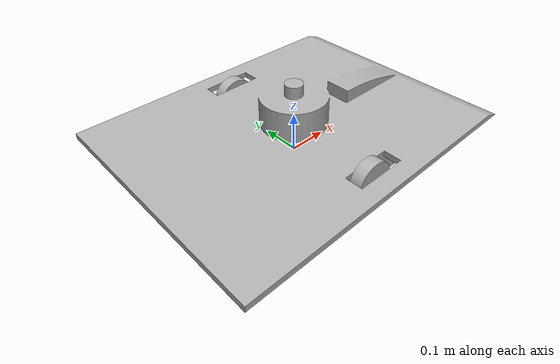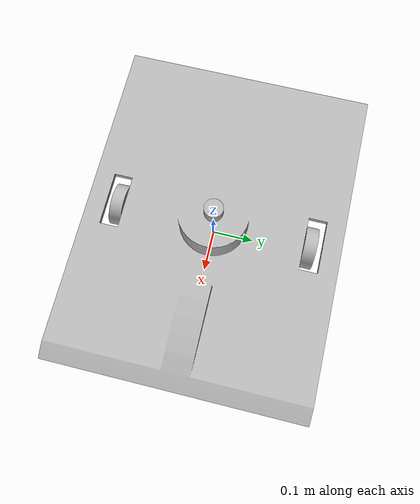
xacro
<?xml version="1.0" ?>
<robot name="t_amr" xmlns:xacro="http://www.ros.org/wiki/xacro">

<xacro:include filename="$(find t_amr_description)/urdf/materials.xacro" />
<xacro:include filename="$(find t_amr_description)/urdf/t_amr.trans" />
<xacro:include filename="$(find t_amr_description)/urdf/t_amr.gazebo" />
<link name="base_link">
  <inertial>
    <origin xyz="0.0003148715844969412 0.0 0.061861199208564865" rpy="0 0 0"/>
    <mass value="150.31139990178528"/>
    <inertia ixx="3.13082" iyy="4.65061" izz="7.563023" ixy="-0.0" iyz="-0.0" ixz="-0.011466"/>
  </inertial>
  <visual>
    <origin xyz="0 0 0" rpy="0 0 0"/>
    <geometry>
      <mesh filename="package://t_amr_description/meshes/base_link.stl" scale="0.001 0.001 0.001"/>
    </geometry>
    <material name="silver"/>
  </visual>
  <collision>
    <origin xyz="0 0 0" rpy="0 0 0"/>
    <geometry>
      <mesh filename="package://t_amr_description/meshes/base_link.stl" scale="0.001 0.001 0.001"/>
    </geometry>
  </collision>
</link>

<link name="left_wheel_1">
  <inertial>
    <origin xyz="1.1102230246251566e-18 0.014999999999999958 6.938893903907228e-18" rpy="0 0 0"/>
    <mass value="1.849612674800991"/>
    <inertia ixx="0.001295" iyy="0.002312" izz="0.001295" ixy="0.0" iyz="0.0" ixz="-0.0"/>
  </inertial>
  <visual>
    <origin xyz="-0.0 -0.22 -0.05" rpy="0 0 0"/>
    <geometry>
      <mesh filename="package://t_amr_description/meshes/left_wheel_1.stl" scale="0.001 0.001 0.001"/>
    </geometry>
    <material name="silver"/>
  </visual>
  <collision>
    <origin xyz="-0.0 -0.22 -0.05" rpy="0 0 0"/>
    <geometry>
      <mesh filename="package://t_amr_description/meshes/left_wheel_1.stl" scale="0.001 0.001 0.001"/>
    </geometry>
  </collision>
</link>

<link name="right_wheel_1">
  <inertial>
    <origin xyz="6.245004513516505e-19 -0.014999999999999958 6.938893903907228e-18" rpy="0 0 0"/>
    <mass value="1.849612674800991"/>
    <inertia ixx="0.001295" iyy="0.002312" izz="0.001295" ixy="-0.0" iyz="0.0" ixz="-0.0"/>
  </inertial>
  <visual>
    <origin xyz="-0.0 0.22 -0.05" rpy="0 0 0"/>
    <geometry>
      <mesh filename="package://t_amr_description/meshes/right_wheel_1.stl" scale="0.001 0.001 0.001"/>
    </geometry>
    <material name="silver"/>
  </visual>
  <collision>
    <origin xyz="-0.0 0.22 -0.05" rpy="0 0 0"/>
    <geometry>
      <mesh filename="package://t_amr_description/meshes/right_wheel_1.stl" scale="0.001 0.001 0.001"/>
    </geometry>
  </collision>
</link>

<link name="laser_1">
  <inertial>
    <origin xyz="2.9784069445072163e-18 -2.9784069445072163e-18 0.014999999999999986" rpy="0 0 0"/>
    <mass value="0.3745465666472006"/>
    <inertia ixx="7.5e-05" iyy="7.5e-05" izz="9.5e-05" ixy="0.0" iyz="0.0" ixz="0.0"/>
  </inertial>
  <visual>
    <origin xyz="-0.0 -0.0 -0.1575" rpy="0 0 0"/>
    <geometry>
      <mesh filename="package://t_amr_description/meshes/laser_1.stl" scale="0.001 0.001 0.001"/>
    </geometry>
    <material name="silver"/>
  </visual>
  <collision>
    <origin xyz="-0.0 -0.0 -0.1575" rpy="0 0 0"/>
    <geometry>
      <mesh filename="package://t_amr_description/meshes/laser_1.stl" scale="0.001 0.001 0.001"/>
    </geometry>
  </collision>
</link>

<joint name="left_joint" type="continuous">
  <origin xyz="0.0 0.22 0.05" rpy="0 0 0"/>
  <parent link="base_link"/>
  <child link="left_wheel_1"/>
  <axis xyz="0.0 1.0 0.0"/>
</joint>

<joint name="right_joint" type="continuous">
  <origin xyz="0.0 -0.22 0.05" rpy="0 0 0"/>
  <parent link="base_link"/>
  <child link="right_wheel_1"/>
  <axis xyz="0.0 -1.0 0.0"/>
</joint>

<joint name="Rigid6" type="fixed">
  <origin xyz="0.0 0.0 0.1575" rpy="0 0 0"/>
  <parent link="base_link"/>
  <child link="laser_1"/>
</joint>

</robot>

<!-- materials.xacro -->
<robot name="t_amr" xmlns:xacro="http://www.ros.org/wiki/xacro" >

<material name="silver">
  <color rgba="0.700 0.700 0.700 1.000"/>
</material>

</robot>

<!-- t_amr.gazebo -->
<robot name="t_amr" xmlns:xacro="http://www.ros.org/wiki/xacro" >

<xacro:property name="body_color" value="Gazebo/Silver" />

<gazebo>
  <plugin name="control" filename="libgazebo_ros_control.so"/>
</gazebo>
<gazebo reference="base_link">
  <material>${body_color}</material>
  <mu1>0.2</mu1>
  <mu2>0.2</mu2>
  <selfCollide>true</selfCollide>
  <gravity>true</gravity>
</gazebo>

<gazebo reference="left_wheel_1">
  <material>${body_color}</material>
  <mu1>0.2</mu1>
  <mu2>0.2</mu2>
  <selfCollide>true</selfCollide>
</gazebo>

<gazebo reference="right_wheel_1">
  <material>${body_color}</material>
  <mu1>0.2</mu1>
  <mu2>0.2</mu2>
  <selfCollide>true</selfCollide>
</gazebo>

<gazebo reference="laser_1">
  <material>${body_color}</material>
  <mu1>0.2</mu1>
  <mu2>0.2</mu2>
  <selfCollide>true</selfCollide>
</gazebo>

<gazebo>
  <plugin name="differential_drive_controller" filename="libgazebo_ros_diff_drive.so">

    <!-- Plugin update rate in Hz -->
    <updateRate>10</updateRate>

    <!-- Name of left joint, defaults to `left_joint` -->
    <leftJoint>left_joint</leftJoint>

    <!-- Name of right joint, defaults to `right_joint` -->
    <rightJoint>right_joint</rightJoint>

    <!-- The distance from the center of one wheel to the other, in meters, defaults to 0.34 m -->
    <wheelSeparation>0.64</wheelSeparation>

    <!-- Diameter of the wheels, in meters, defaults to 0.15 m -->
    <wheelDiameter>0.10</wheelDiameter>

    <!-- Wheel acceleration, in rad/s^2, defaults to 0.0 rad/s^2 -->
    <wheelAcceleration>1.0</wheelAcceleration>

    <!-- Maximum torque which the wheels can produce, in Nm, defaults to 5 Nm -->
    <wheelTorque>20</wheelTorque>

    <!-- Topic to receive geometry_msgs/Twist message commands, defaults to `cmd_vel` -->
    <commandTopic>cmd_vel</commandTopic>

    <!-- Topic to publish nav_msgs/Odometry messages, defaults to `odom` -->
    <odometryTopic>odom</odometryTopic>

    <!-- Odometry frame, defaults to `odom` -->
    <odometryFrame>odom</odometryFrame>

    <!-- Robot frame to calculate odometry from, defaults to `base_footprint` -->
    <robotBaseFrame>base_link</robotBaseFrame>

    <!-- Odometry source, 0 for ENCODER, 1 for WORLD, defaults to WORLD -->
    <odometrySource>1</odometrySource>

    <!-- Set to true to publish transforms for the wheel links, defaults to false -->
    <publishWheelTF>true</publishWheelTF>

    <!-- Set to true to publish transforms for the odometry, defaults to true -->
    <publishOdom>true</publishOdom>

    <!-- Set to true to publish sensor_msgs/JointState on /joint_states for the wheel joints, defaults to false -->
    <publishWheelJointState>true</publishWheelJointState>

    <!-- Set to true to swap right and left wheels, defaults to true -->
    <legacyMode>false</legacyMode>
  </plugin>
</gazebo>

</robot>
